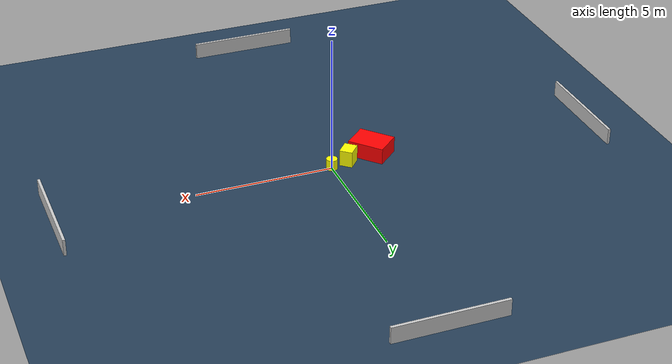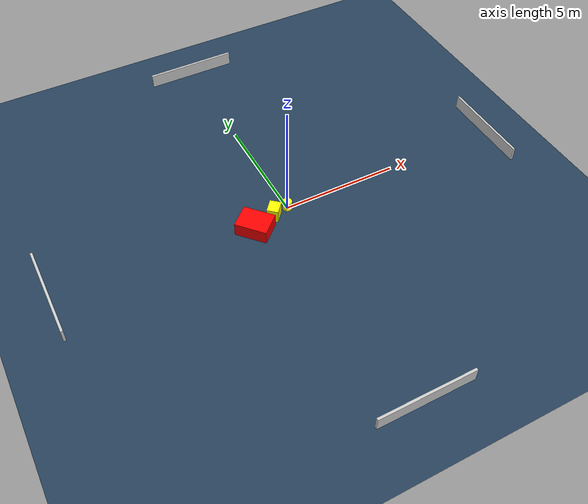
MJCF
<?xml version="1.0" ?>
<mujoco model="generated_environment">
  <option timestep="0.01" integrator="RK4" cone="elliptic"/>
  <default>
    <geom density="1"/>
  </default>
  <asset>
    <texture builtin="gradient" height="3072" name="skybox" rgb1="0.3 0.5 0.7" rgb2="0 0 0" type="skybox" width="512"/>
    <texture builtin="checker" height="300" name="groundplane" rgb1="0.2 0.3 0.4" rgb2="0.1 0.2 0.3" type="2d" width="300"/>
    <material name="groundplane" reflectance="0.2" texrepeat="5 5" texture="groundplane"/>
  </asset>
  <worldbody>
    <light dir="0 0 -1" directional="true" pos="0 0 1.5"/>
    <geom condim="3" friction="0.5 0.005 0.001" material="groundplane" name="floor" pos="0 0 0" size="0 0 0.05" type="plane"/>
    <body name="walls">
      <geom name="wall_1" condim="4" pos="-10.0 0.0 0.3" rgba="0.800000011920929 0.800000011920929 0.800000011920929 1.0" size="0.05 2.0 0.3" type="box"/>
      <geom name="wall_2" condim="4" pos="10.0 0.0 0.3" rgba="0.800000011920929 0.800000011920929 0.800000011920929 1.0" size="0.05 2.0 0.3" type="box"/>
      <geom name="wall_3" condim="4" pos="0.0 -10.0 0.3" rgba="0.800000011920929 0.800000011920929 0.800000011920929 1.0" size="2.0 0.05 0.3" type="box"/>
      <geom name="wall_4" condim="4" pos="0.0 10.0 0.3" rgba="0.800000011920929 0.800000011920929 0.800000011920929 1.0" size="2.0 0.05 0.3" type="box"/>
    </body>
    <body name="robot">
      <joint name="joint_x" type="slide" pos="0 0 0" axis="1 0 0"/>
      <joint name="joint_y" type="slide" pos="0 0 0" axis="0 1 0"/>
      <geom name="robot" type="cylinder" pos="0.0 0.0 0.2" size="0.2 0.2 0.0" mass="5.0" friction="1.0 0.005 0.0001" condim="4" rgba="1.0 1.0 0.0 1.0"/>
    </body>
    <body name="obstacle_1_movable">
      <geom name="obstacle_1_movable" condim="4" pos="-0.6902261528602704 -0.1585682280588919 0.3" euler="0 0 319.2612614599673" friction="0.0 0.005 0.001" rgba="1.0 1.0 0.0 1.0" size="0.23751280226847876 0.28827925285284767 0.3" type="box" mass="0.1"/>
      <joint type="free"/>
    </body>
    <body name="obstacle_2_static">
      <geom name="obstacle_2_static" condim="4" pos="-1.6911176366018117 -0.4566976085304461 0.3" euler="0 0 132.2075561038189" friction="0.0 0.005 0.001" rgba="1.0 0.0 0.0 1.0" size="0.674295581241969 0.5099062406910853 0.3" type="box"/>
    </body>
  </worldbody>
  <actuator>
    <motor name="actuator_x" joint="joint_x" gear="1" ctrlrange="-1 1"/>
    <motor name="actuator_y" joint="joint_y" gear="1" ctrlrange="-1 1"/>
  </actuator>
</mujoco>
